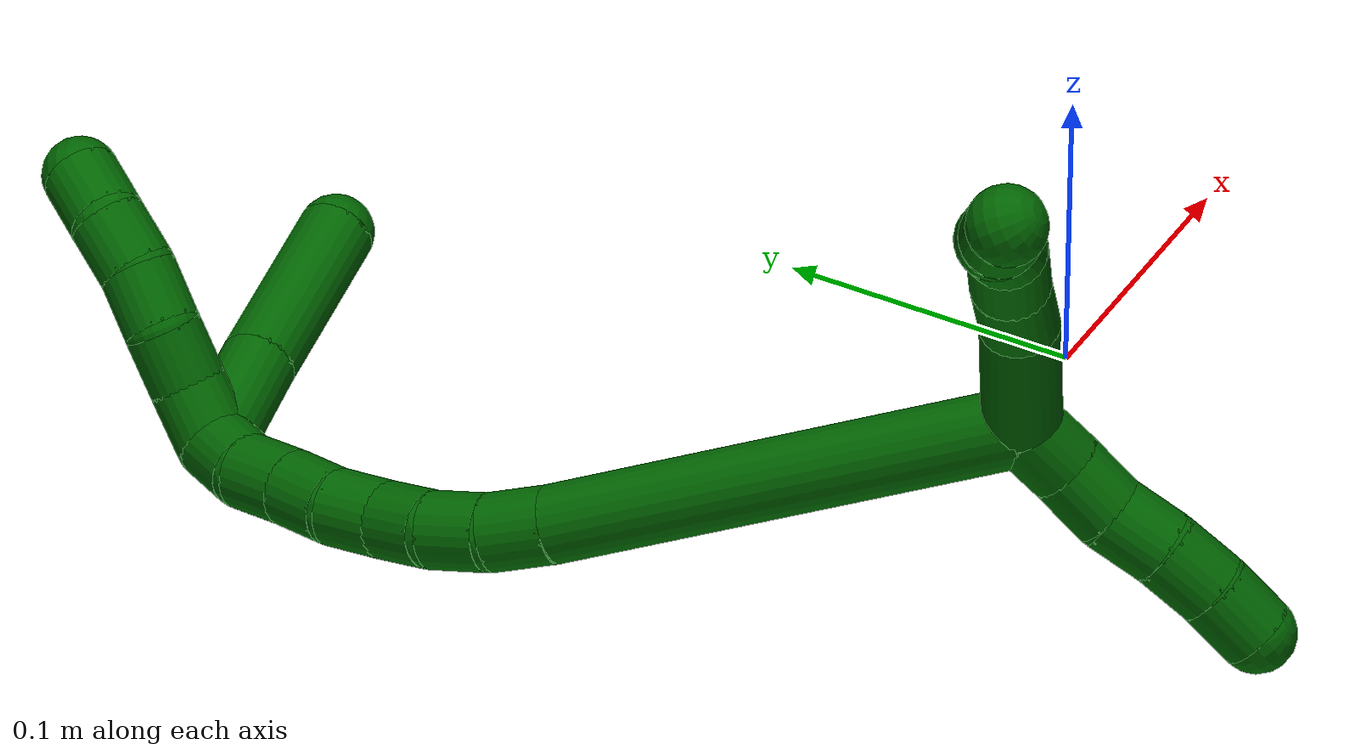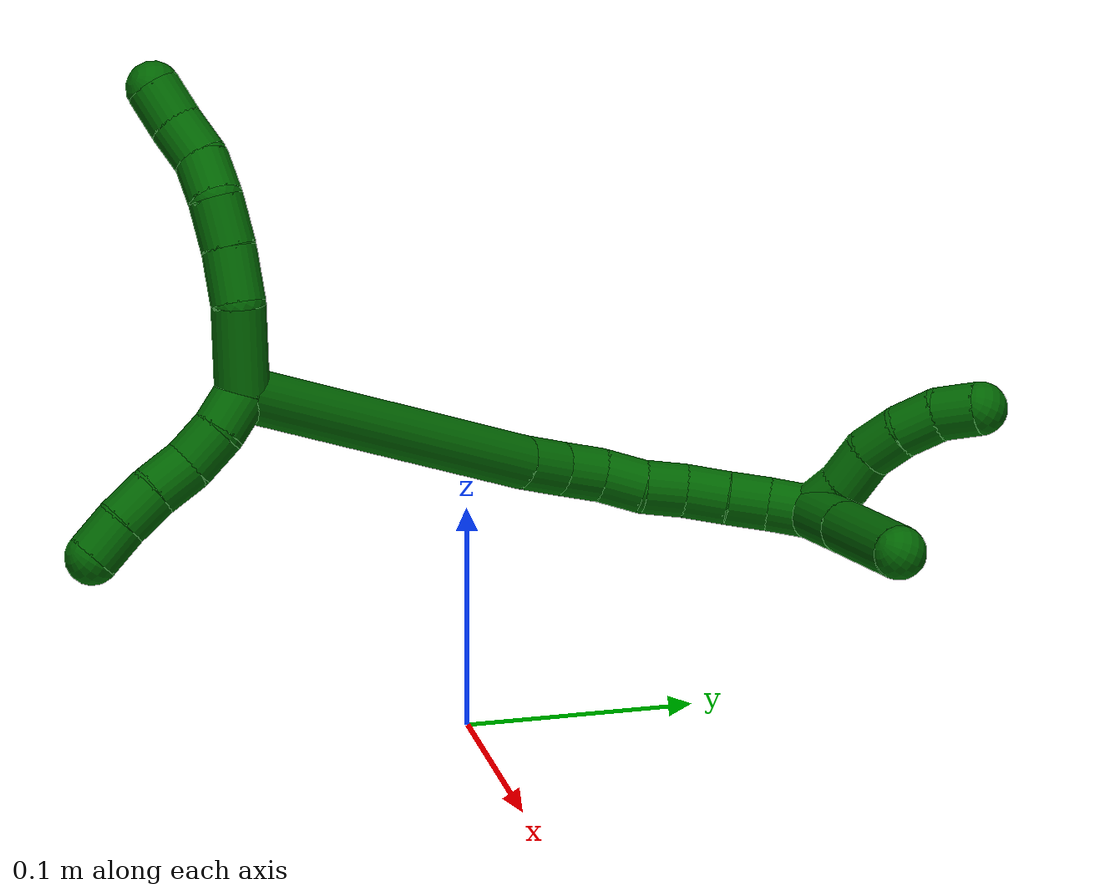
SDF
<sdf version="1.7">
 <world name="default">
  <model name="6">
   <static>0</static>
   <link name="6">
    <collision name="collision-cylinder-e_1_2_8">
     <pose>0.015985 0.006726 -0.010904 -2.58889 0.895164 -2.07441</pose>
     <geometry><cylinder><radius>0.0125</radius><length>0.04097</length></cylinder></geometry>
     <surface>
      <friction><ode><mu>1.16</mu><mu2>1.16</mu2><slip1>0</slip1><slip2>0</slip2></ode></friction>
      <contact><ode><kp>1e+06</kp><kd>1</kd><max_vel>0</max_vel><min_depth>0.001</min_depth></ode></contact>
     </surface>
    </collision>
    <visual name="visual-cylinder-e_1_2_8">
     <pose>0.015985 0.006726 -0.010904 -2.58889 0.895164 -2.07441</pose>
     <geometry><cylinder><radius>0.0125</radius><length>0.04097</length></cylinder></geometry>
     <material><ambient>0 0.392157 0.003922 1</ambient></material>
    </visual>
    <collision name="collision-cylinder-e_2_8_9">
     <pose>0.043133 0.013544 -0.027649 -3.12567 1.08867 -3.1153</pose>
     <geometry><cylinder><radius>0.0125</radius><length>0.025201</length></cylinder></geometry>
     <surface>
      <friction><ode><mu>1.16</mu><mu2>1.16</mu2><slip1>0</slip1><slip2>0</slip2></ode></friction>
      <contact><ode><kp>1e+06</kp><kd>1</kd><max_vel>0</max_vel><min_depth>0.001</min_depth></ode></contact>
     </surface>
    </collision>
    <visual name="visual-cylinder-e_2_8_9">
     <pose>0.043133 0.013544 -0.027649 -3.12567 1.08867 -3.1153</pose>
     <geometry><cylinder><radius>0.0125</radius><length>0.025201</length></cylinder></geometry>
     <material><ambient>0 0.392157 0.003922 1</ambient></material>
    </visual>
    <collision name="collision-cylinder-e_3_9_10">
     <pose>0.064093 0.013045 -0.039461 3.04268 1.02122 2.96532</pose>
     <geometry><cylinder><radius>0.0125</radius><length>0.022975</length></cylinder></geometry>
     <surface>
      <friction><ode><mu>1.16</mu><mu2>1.16</mu2><slip1>0</slip1><slip2>0</slip2></ode></friction>
      <contact><ode><kp>1e+06</kp><kd>1</kd><max_vel>0</max_vel><min_depth>0.001</min_depth></ode></contact>
     </surface>
    </collision>
    <visual name="visual-cylinder-e_3_9_10">
     <pose>0.064093 0.013045 -0.039461 3.04268 1.02122 2.96532</pose>
     <geometry><cylinder><radius>0.0125</radius><length>0.022975</length></cylinder></geometry>
     <material><ambient>0 0.392157 0.003922 1</ambient></material>
    </visual>
    <collision name="collision-cylinder-e_4_10_11">
     <pose>0.08275 0.008987 -0.049059 2.379 1.05572 1.93685</pose>
     <geometry><cylinder><radius>0.0125</radius><length>0.020364</length></cylinder></geometry>
     <surface>
      <friction><ode><mu>1.16</mu><mu2>1.16</mu2><slip1>0</slip1><slip2>0</slip2></ode></friction>
      <contact><ode><kp>1e+06</kp><kd>1</kd><max_vel>0</max_vel><min_depth>0.001</min_depth></ode></contact>
     </surface>
    </collision>
    <visual name="visual-cylinder-e_4_10_11">
     <pose>0.08275 0.008987 -0.049059 2.379 1.05572 1.93685</pose>
     <geometry><cylinder><radius>0.0125</radius><length>0.020364</length></cylinder></geometry>
     <material><ambient>0 0.392157 0.003922 1</ambient></material>
    </visual>
    <collision name="collision-cylinder-e_5_11_12">
     <pose>0.098829 0.000805 -0.058028 2.41825 0.791734 1.67022</pose>
     <geometry><cylinder><radius>0.0125</radius><length>0.02029</length></cylinder></geometry>
     <surface>
      <friction><ode><mu>1.16</mu><mu2>1.16</mu2><slip1>0</slip1><slip2>0</slip2></ode></friction>
      <contact><ode><kp>1e+06</kp><kd>1</kd><max_vel>0</max_vel><min_depth>0.001</min_depth></ode></contact>
     </surface>
    </collision>
    <visual name="visual-cylinder-e_5_11_12">
     <pose>0.098829 0.000805 -0.058028 2.41825 0.791734 1.67022</pose>
     <geometry><cylinder><radius>0.0125</radius><length>0.02029</length></cylinder></geometry>
     <material><ambient>0 0.392157 0.003922 1</ambient></material>
    </visual>
    <collision name="collision-cylinder-e_6_12_6">
     <pose>0.113399 -0.007438 -0.069335 2.6078 0.81503 2.01238</pose>
     <geometry><cylinder><radius>0.0125</radius><length>0.020201</length></cylinder></geometry>
     <surface>
      <friction><ode><mu>1.16</mu><mu2>1.16</mu2><slip1>0</slip1><slip2>0</slip2></ode></friction>
      <contact><ode><kp>1e+06</kp><kd>1</kd><max_vel>0</max_vel><min_depth>0.001</min_depth></ode></contact>
     </surface>
    </collision>
    <visual name="visual-cylinder-e_6_12_6">
     <pose>0.113399 -0.007438 -0.069335 2.6078 0.81503 2.01238</pose>
     <geometry><cylinder><radius>0.0125</radius><length>0.020201</length></cylinder></geometry>
     <material><ambient>0 0.392157 0.003922 1</ambient></material>
    </visual>
    <collision name="collision-cylinder-e_1_2_13">
     <pose>-0.00917 -0.003696 -0.001499 1.95618 -1.16055 -1.54383</pose>
     <geometry><cylinder><radius>0.0125</radius><length>0.02</length></cylinder></geometry>
     <surface>
      <friction><ode><mu>1.16</mu><mu2>1.16</mu2><slip1>0</slip1><slip2>0</slip2></ode></friction>
      <contact><ode><kp>1e+06</kp><kd>1</kd><max_vel>0</max_vel><min_depth>0.001</min_depth></ode></contact>
     </surface>
    </collision>
    <visual name="visual-cylinder-e_1_2_13">
     <pose>-0.00917 -0.003696 -0.001499 1.95618 -1.16055 -1.54383</pose>
     <geometry><cylinder><radius>0.0125</radius><length>0.02</length></cylinder></geometry>
     <material><ambient>0 0.392157 0.003922 1</ambient></material>
    </visual>
    <collision name="collision-cylinder-e_2_13_14">
     <pose>-0.026506 -0.012694 -0.00528 1.9772 -0.955497 -1.33289</pose>
     <geometry><cylinder><radius>0.0125</radius><length>0.02</length></cylinder></geometry>
     <surface>
      <friction><ode><mu>1.16</mu><mu2>1.16</mu2><slip1>0</slip1><slip2>0</slip2></ode></friction>
      <contact><ode><kp>1e+06</kp><kd>1</kd><max_vel>0</max_vel><min_depth>0.001</min_depth></ode></contact>
     </surface>
    </collision>
    <visual name="visual-cylinder-e_2_13_14">
     <pose>-0.026506 -0.012694 -0.00528 1.9772 -0.955497 -1.33289</pose>
     <geometry><cylinder><radius>0.0125</radius><length>0.02</length></cylinder></geometry>
     <material><ambient>0 0.392157 0.003922 1</ambient></material>
    </visual>
    <collision name="collision-cylinder-e_3_14_15">
     <pose>-0.042313 -0.022733 -0.011942 2.31694 -0.869528 -1.63065</pose>
     <geometry><cylinder><radius>0.0125</radius><length>0.02</length></cylinder></geometry>
     <surface>
      <friction><ode><mu>1.16</mu><mu2>1.16</mu2><slip1>0</slip1><slip2>0</slip2></ode></friction>
      <contact><ode><kp>1e+06</kp><kd>1</kd><max_vel>0</max_vel><min_depth>0.001</min_depth></ode></contact>
     </surface>
    </collision>
    <visual name="visual-cylinder-e_3_14_15">
     <pose>-0.042313 -0.022733 -0.011942 2.31694 -0.869528 -1.63065</pose>
     <geometry><cylinder><radius>0.0125</radius><length>0.02</length></cylinder></geometry>
     <material><ambient>0 0.392157 0.003922 1</ambient></material>
    </visual>
    <collision name="collision-cylinder-e_4_15_16">
     <pose>-0.058037 -0.032374 -0.019578 2.15708 -0.941443 -1.51835</pose>
     <geometry><cylinder><radius>0.0125</radius><length>0.02</length></cylinder></geometry>
     <surface>
      <friction><ode><mu>1.16</mu><mu2>1.16</mu2><slip1>0</slip1><slip2>0</slip2></ode></friction>
      <contact><ode><kp>1e+06</kp><kd>1</kd><max_vel>0</max_vel><min_depth>0.001</min_depth></ode></contact>
     </surface>
    </collision>
    <visual name="visual-cylinder-e_4_15_16">
     <pose>-0.058037 -0.032374 -0.019578 2.15708 -0.941443 -1.51835</pose>
     <geometry><cylinder><radius>0.0125</radius><length>0.02</length></cylinder></geometry>
     <material><ambient>0 0.392157 0.003922 1</ambient></material>
    </visual>
    <collision name="collision-cylinder-e_5_16_5">
     <pose>-0.074481 -0.042325 -0.024987 1.97388 -0.989867 -1.36996</pose>
     <geometry><cylinder><radius>0.0125</radius><length>0.02</length></cylinder></geometry>
     <surface>
      <friction><ode><mu>1.16</mu><mu2>1.16</mu2><slip1>0</slip1><slip2>0</slip2></ode></friction>
      <contact><ode><kp>1e+06</kp><kd>1</kd><max_vel>0</max_vel><min_depth>0.001</min_depth></ode></contact>
     </surface>
    </collision>
    <visual name="visual-cylinder-e_5_16_5">
     <pose>-0.074481 -0.042325 -0.024987 1.97388 -0.989867 -1.36996</pose>
     <geometry><cylinder><radius>0.0125</radius><length>0.02</length></cylinder></geometry>
     <material><ambient>0 0.392157 0.003922 1</ambient></material>
    </visual>
    <collision name="collision-cylinder-e_1_2_17">
     <pose>0.014195 0.004708 0.077709 -0.060514 0.18035 -0.005473</pose>
     <geometry><cylinder><radius>0.0125</radius><length>0.158271</length></cylinder></geometry>
     <surface>
      <friction><ode><mu>1.16</mu><mu2>1.16</mu2><slip1>0</slip1><slip2>0</slip2></ode></friction>
      <contact><ode><kp>1e+06</kp><kd>1</kd><max_vel>0</max_vel><min_depth>0.001</min_depth></ode></contact>
     </surface>
    </collision>
    <visual name="visual-cylinder-e_1_2_17">
     <pose>0.014195 0.004708 0.077709 -0.060514 0.18035 -0.005473</pose>
     <geometry><cylinder><radius>0.0125</radius><length>0.158271</length></cylinder></geometry>
     <material><ambient>0 0.392157 0.003922 1</ambient></material>
    </visual>
    <collision name="collision-cylinder-e_2_17_18">
     <pose>0.030742 0.010617 0.165717 -0.11602 0.223137 -0.013013</pose>
     <geometry><cylinder><radius>0.0125</radius><length>0.021264</length></cylinder></geometry>
     <surface>
      <friction><ode><mu>1.16</mu><mu2>1.16</mu2><slip1>0</slip1><slip2>0</slip2></ode></friction>
      <contact><ode><kp>1e+06</kp><kd>1</kd><max_vel>0</max_vel><min_depth>0.001</min_depth></ode></contact>
     </surface>
    </collision>
    <visual name="visual-cylinder-e_2_17_18">
     <pose>0.030742 0.010617 0.165717 -0.11602 0.223137 -0.013013</pose>
     <geometry><cylinder><radius>0.0125</radius><length>0.021264</length></cylinder></geometry>
     <material><ambient>0 0.392157 0.003922 1</ambient></material>
    </visual>
    <collision name="collision-cylinder-e_3_18_19">
     <pose>0.034781 0.014985 0.185452 -0.323901 0.167784 -0.027476</pose>
     <geometry><cylinder><radius>0.0125</radius><length>0.02019</length></cylinder></geometry>
     <surface>
      <friction><ode><mu>1.16</mu><mu2>1.16</mu2><slip1>0</slip1><slip2>0</slip2></ode></friction>
      <contact><ode><kp>1e+06</kp><kd>1</kd><max_vel>0</max_vel><min_depth>0.001</min_depth></ode></contact>
     </surface>
    </collision>
    <visual name="visual-cylinder-e_3_18_19">
     <pose>0.034781 0.014985 0.185452 -0.323901 0.167784 -0.027476</pose>
     <geometry><cylinder><radius>0.0125</radius><length>0.02019</length></cylinder></geometry>
     <material><ambient>0 0.392157 0.003922 1</ambient></material>
    </visual>
    <collision name="collision-cylinder-e_4_19_20">
     <pose>0.036252 0.023102 0.203695 -0.511981 -0.02127 0.005567</pose>
     <geometry><cylinder><radius>0.0125</radius><length>0.02021</length></cylinder></geometry>
     <surface>
      <friction><ode><mu>1.16</mu><mu2>1.16</mu2><slip1>0</slip1><slip2>0</slip2></ode></friction>
      <contact><ode><kp>1e+06</kp><kd>1</kd><max_vel>0</max_vel><min_depth>0.001</min_depth></ode></contact>
     </surface>
    </collision>
    <visual name="visual-cylinder-e_4_19_20">
     <pose>0.036252 0.023102 0.203695 -0.511981 -0.02127 0.005567</pose>
     <geometry><cylinder><radius>0.0125</radius><length>0.02021</length></cylinder></geometry>
     <material><ambient>0 0.392157 0.003922 1</ambient></material>
    </visual>
    <collision name="collision-cylinder-e_5_20_21">
     <pose>0.037712 0.032781 0.221154 -0.500242 0.168265 -0.043082</pose>
     <geometry><cylinder><radius>0.0125</radius><length>0.020003</length></cylinder></geometry>
     <surface>
      <friction><ode><mu>1.16</mu><mu2>1.16</mu2><slip1>0</slip1><slip2>0</slip2></ode></friction>
      <contact><ode><kp>1e+06</kp><kd>1</kd><max_vel>0</max_vel><min_depth>0.001</min_depth></ode></contact>
     </surface>
    </collision>
    <visual name="visual-cylinder-e_5_20_21">
     <pose>0.037712 0.032781 0.221154 -0.500242 0.168265 -0.043082</pose>
     <geometry><cylinder><radius>0.0125</radius><length>0.020003</length></cylinder></geometry>
     <material><ambient>0 0.392157 0.003922 1</ambient></material>
    </visual>
    <collision name="collision-cylinder-e_6_21_22">
     <pose>0.039733 0.043585 0.237748 -0.652984 0.034577 -0.011709</pose>
     <geometry><cylinder><radius>0.0125</radius><length>0.020011</length></cylinder></geometry>
     <surface>
      <friction><ode><mu>1.16</mu><mu2>1.16</mu2><slip1>0</slip1><slip2>0</slip2></ode></friction>
      <contact><ode><kp>1e+06</kp><kd>1</kd><max_vel>0</max_vel><min_depth>0.001</min_depth></ode></contact>
     </surface>
    </collision>
    <visual name="visual-cylinder-e_6_21_22">
     <pose>0.039733 0.043585 0.237748 -0.652984 0.034577 -0.011709</pose>
     <geometry><cylinder><radius>0.0125</radius><length>0.020011</length></cylinder></geometry>
     <material><ambient>0 0.392157 0.003922 1</ambient></material>
    </visual>
    <collision name="collision-cylinder-e_7_22_23">
     <pose>0.040849 0.0553 0.253923 -0.600623 0.077063 -0.023875</pose>
     <geometry><cylinder><radius>0.0125</radius><length>0.020017</length></cylinder></geometry>
     <surface>
      <friction><ode><mu>1.16</mu><mu2>1.16</mu2><slip1>0</slip1><slip2>0</slip2></ode></friction>
      <contact><ode><kp>1e+06</kp><kd>1</kd><max_vel>0</max_vel><min_depth>0.001</min_depth></ode></contact>
     </surface>
    </collision>
    <visual name="visual-cylinder-e_7_22_23">
     <pose>0.040849 0.0553 0.253923 -0.600623 0.077063 -0.023875</pose>
     <geometry><cylinder><radius>0.0125</radius><length>0.020017</length></cylinder></geometry>
     <material><ambient>0 0.392157 0.003922 1</ambient></material>
    </visual>
    <collision name="collision-cylinder-e_8_23_1">
     <pose>0.040994 0.068562 0.268625 -0.867009 -0.062497 0.028935</pose>
     <geometry><cylinder><radius>0.0125</radius><length>0.020035</length></cylinder></geometry>
     <surface>
      <friction><ode><mu>1.16</mu><mu2>1.16</mu2><slip1>0</slip1><slip2>0</slip2></ode></friction>
      <contact><ode><kp>1e+06</kp><kd>1</kd><max_vel>0</max_vel><min_depth>0.001</min_depth></ode></contact>
     </surface>
    </collision>
    <visual name="visual-cylinder-e_8_23_1">
     <pose>0.040994 0.068562 0.268625 -0.867009 -0.062497 0.028935</pose>
     <geometry><cylinder><radius>0.0125</radius><length>0.020035</length></cylinder></geometry>
     <material><ambient>0 0.392157 0.003922 1</ambient></material>
    </visual>
    <collision name="collision-cylinder-e_1_1_24">
     <pose>0.045676 0.08461 0.276005 -1.46311 0.559477 -0.504783</pose>
     <geometry><cylinder><radius>0.0125</radius><length>0.02</length></cylinder></geometry>
     <surface>
      <friction><ode><mu>1.16</mu><mu2>1.16</mu2><slip1>0</slip1><slip2>0</slip2></ode></friction>
      <contact><ode><kp>1e+06</kp><kd>1</kd><max_vel>0</max_vel><min_depth>0.001</min_depth></ode></contact>
     </surface>
    </collision>
    <visual name="visual-cylinder-e_1_1_24">
     <pose>0.045676 0.08461 0.276005 -1.46311 0.559477 -0.504783</pose>
     <geometry><cylinder><radius>0.0125</radius><length>0.02</length></cylinder></geometry>
     <material><ambient>0 0.392157 0.003922 1</ambient></material>
    </visual>
    <collision name="collision-cylinder-e_2_24_25">
     <pose>0.057837 0.100307 0.276503 -1.62764 0.755086 -0.79487</pose>
     <geometry><cylinder><radius>0.0125</radius><length>0.02</length></cylinder></geometry>
     <surface>
      <friction><ode><mu>1.16</mu><mu2>1.16</mu2><slip1>0</slip1><slip2>0</slip2></ode></friction>
      <contact><ode><kp>1e+06</kp><kd>1</kd><max_vel>0</max_vel><min_depth>0.001</min_depth></ode></contact>
     </surface>
    </collision>
    <visual name="visual-cylinder-e_2_24_25">
     <pose>0.057837 0.100307 0.276503 -1.62764 0.755086 -0.79487</pose>
     <geometry><cylinder><radius>0.0125</radius><length>0.02</length></cylinder></geometry>
     <material><ambient>0 0.392157 0.003922 1</ambient></material>
    </visual>
    <collision name="collision-cylinder-e_3_25_26">
     <pose>0.069181 0.116443 0.277198 -1.44639 0.465756 -0.412776</pose>
     <geometry><cylinder><radius>0.0125</radius><length>0.02</length></cylinder></geometry>
     <surface>
      <friction><ode><mu>1.16</mu><mu2>1.16</mu2><slip1>0</slip1><slip2>0</slip2></ode></friction>
      <contact><ode><kp>1e+06</kp><kd>1</kd><max_vel>0</max_vel><min_depth>0.001</min_depth></ode></contact>
     </surface>
    </collision>
    <visual name="visual-cylinder-e_3_25_26">
     <pose>0.069181 0.116443 0.277198 -1.44639 0.465756 -0.412776</pose>
     <geometry><cylinder><radius>0.0125</radius><length>0.02</length></cylinder></geometry>
     <material><ambient>0 0.392157 0.003922 1</ambient></material>
    </visual>
    <collision name="collision-cylinder-e_4_26_27">
     <pose>0.077605 0.13405 0.281156 -1.25564 0.404154 -0.295223</pose>
     <geometry><cylinder><radius>0.0125</radius><length>0.02</length></cylinder></geometry>
     <surface>
      <friction><ode><mu>1.16</mu><mu2>1.16</mu2><slip1>0</slip1><slip2>0</slip2></ode></friction>
      <contact><ode><kp>1e+06</kp><kd>1</kd><max_vel>0</max_vel><min_depth>0.001</min_depth></ode></contact>
     </surface>
    </collision>
    <visual name="visual-cylinder-e_4_26_27">
     <pose>0.077605 0.13405 0.281156 -1.25564 0.404154 -0.295223</pose>
     <geometry><cylinder><radius>0.0125</radius><length>0.02</length></cylinder></geometry>
     <material><ambient>0 0.392157 0.003922 1</ambient></material>
    </visual>
    <collision name="collision-cylinder-e_5_27_4">
     <pose>0.082928 0.151868 0.287967 -1.15928 0.139494 -0.091405</pose>
     <geometry><cylinder><radius>0.0125</radius><length>0.02</length></cylinder></geometry>
     <surface>
      <friction><ode><mu>1.16</mu><mu2>1.16</mu2><slip1>0</slip1><slip2>0</slip2></ode></friction>
      <contact><ode><kp>1e+06</kp><kd>1</kd><max_vel>0</max_vel><min_depth>0.001</min_depth></ode></contact>
     </surface>
    </collision>
    <visual name="visual-cylinder-e_5_27_4">
     <pose>0.082928 0.151868 0.287967 -1.15928 0.139494 -0.091405</pose>
     <geometry><cylinder><radius>0.0125</radius><length>0.02</length></cylinder></geometry>
     <material><ambient>0 0.392157 0.003922 1</ambient></material>
    </visual>
    <collision name="collision-cylinder-e_1_1_28">
     <pose>0.032326 0.092933 0.271974 -1.75498 -0.441039 0.52702</pose>
     <geometry><cylinder><radius>0.0125</radius><length>0.03768</length></cylinder></geometry>
     <surface>
      <friction><ode><mu>1.16</mu><mu2>1.16</mu2><slip1>0</slip1><slip2>0</slip2></ode></friction>
      <contact><ode><kp>1e+06</kp><kd>1</kd><max_vel>0</max_vel><min_depth>0.001</min_depth></ode></contact>
     </surface>
    </collision>
    <visual name="visual-cylinder-e_1_1_28">
     <pose>0.032326 0.092933 0.271974 -1.75498 -0.441039 0.52702</pose>
     <geometry><cylinder><radius>0.0125</radius><length>0.03768</length></cylinder></geometry>
     <material><ambient>0 0.392157 0.003922 1</ambient></material>
    </visual>
    <collision name="collision-cylinder-e_2_28_3">
     <pose>0.010871 0.137031 0.262292 -1.80628 -0.444997 0.558881</pose>
     <geometry><cylinder><radius>0.0125</radius><length>0.06232</length></cylinder></geometry>
     <surface>
      <friction><ode><mu>1.16</mu><mu2>1.16</mu2><slip1>0</slip1><slip2>0</slip2></ode></friction>
      <contact><ode><kp>1e+06</kp><kd>1</kd><max_vel>0</max_vel><min_depth>0.001</min_depth></ode></contact>
     </surface>
    </collision>
    <visual name="visual-cylinder-e_2_28_3">
     <pose>0.010871 0.137031 0.262292 -1.80628 -0.444997 0.558881</pose>
     <geometry><cylinder><radius>0.0125</radius><length>0.06232</length></cylinder></geometry>
     <material><ambient>0 0.392157 0.003922 1</ambient></material>
    </visual>
    <collision name="collision-sphere-3">
     <pose>-0.002542 0.164381 0.25573 0 -0 0</pose>
     <geometry><sphere><radius>0.0125</radius></sphere></geometry>
     <surface>
      <friction><ode><mu>1.16</mu><mu2>1.16</mu2><slip1>0</slip1><slip2>0</slip2></ode></friction>
      <contact><ode><kp>1e+06</kp><kd>1</kd><max_vel>0</max_vel><min_depth>0.001</min_depth></ode></contact>
     </surface>
    </collision>
    <visual name="visual-sphere-3">
     <pose>-0.002542 0.164381 0.25573 0 -0 0</pose>
     <geometry><sphere><radius>0.0125</radius></sphere></geometry>
     <material><ambient>0 0.392157 0.003922 1</ambient></material>
    </visual>
    <collision name="collision-sphere-28">
     <pose>0.024284 0.109682 0.268854 0 -0 0</pose>
     <geometry><sphere><radius>0.0125</radius></sphere></geometry>
     <surface>
      <friction><ode><mu>1.16</mu><mu2>1.16</mu2><slip1>0</slip1><slip2>0</slip2></ode></friction>
      <contact><ode><kp>1e+06</kp><kd>1</kd><max_vel>0</max_vel><min_depth>0.001</min_depth></ode></contact>
     </surface>
    </collision>
    <visual name="visual-sphere-28">
     <pose>0.024284 0.109682 0.268854 0 -0 0</pose>
     <geometry><sphere><radius>0.0125</radius></sphere></geometry>
     <material><ambient>0 0.392157 0.003922 1</ambient></material>
    </visual>
    <collision name="collision-sphere-4">
     <pose>0.084318 0.160944 0.291928 0 -0 0</pose>
     <geometry><sphere><radius>0.0125</radius></sphere></geometry>
     <surface>
      <friction><ode><mu>1.16</mu><mu2>1.16</mu2><slip1>0</slip1><slip2>0</slip2></ode></friction>
      <contact><ode><kp>1e+06</kp><kd>1</kd><max_vel>0</max_vel><min_depth>0.001</min_depth></ode></contact>
     </surface>
    </collision>
    <visual name="visual-sphere-4">
     <pose>0.084318 0.160944 0.291928 0 -0 0</pose>
     <geometry><sphere><radius>0.0125</radius></sphere></geometry>
     <material><ambient>0 0.392157 0.003922 1</ambient></material>
    </visual>
    <collision name="collision-sphere-27">
     <pose>0.081537 0.142792 0.284006 0 -0 0</pose>
     <geometry><sphere><radius>0.0125</radius></sphere></geometry>
     <surface>
      <friction><ode><mu>1.16</mu><mu2>1.16</mu2><slip1>0</slip1><slip2>0</slip2></ode></friction>
      <contact><ode><kp>1e+06</kp><kd>1</kd><max_vel>0</max_vel><min_depth>0.001</min_depth></ode></contact>
     </surface>
    </collision>
    <visual name="visual-sphere-27">
     <pose>0.081537 0.142792 0.284006 0 -0 0</pose>
     <geometry><sphere><radius>0.0125</radius></sphere></geometry>
     <material><ambient>0 0.392157 0.003922 1</ambient></material>
    </visual>
    <collision name="collision-sphere-26">
     <pose>0.073672 0.125309 0.278306 0 -0 0</pose>
     <geometry><sphere><radius>0.0125</radius></sphere></geometry>
     <surface>
      <friction><ode><mu>1.16</mu><mu2>1.16</mu2><slip1>0</slip1><slip2>0</slip2></ode></friction>
      <contact><ode><kp>1e+06</kp><kd>1</kd><max_vel>0</max_vel><min_depth>0.001</min_depth></ode></contact>
     </surface>
    </collision>
    <visual name="visual-sphere-26">
     <pose>0.073672 0.125309 0.278306 0 -0 0</pose>
     <geometry><sphere><radius>0.0125</radius></sphere></geometry>
     <material><ambient>0 0.392157 0.003922 1</ambient></material>
    </visual>
    <collision name="collision-sphere-25">
     <pose>0.06469 0.107577 0.276089 0 -0 0</pose>
     <geometry><sphere><radius>0.0125</radius></sphere></geometry>
     <surface>
      <friction><ode><mu>1.16</mu><mu2>1.16</mu2><slip1>0</slip1><slip2>0</slip2></ode></friction>
      <contact><ode><kp>1e+06</kp><kd>1</kd><max_vel>0</max_vel><min_depth>0.001</min_depth></ode></contact>
     </surface>
    </collision>
    <visual name="visual-sphere-25">
     <pose>0.06469 0.107577 0.276089 0 -0 0</pose>
     <geometry><sphere><radius>0.0125</radius></sphere></geometry>
     <material><ambient>0 0.392157 0.003922 1</ambient></material>
    </visual>
    <collision name="collision-sphere-24">
     <pose>0.050983 0.093037 0.276916 0 -0 0</pose>
     <geometry><sphere><radius>0.0125</radius></sphere></geometry>
     <surface>
      <friction><ode><mu>1.16</mu><mu2>1.16</mu2><slip1>0</slip1><slip2>0</slip2></ode></friction>
      <contact><ode><kp>1e+06</kp><kd>1</kd><max_vel>0</max_vel><min_depth>0.001</min_depth></ode></contact>
     </surface>
    </collision>
    <visual name="visual-sphere-24">
     <pose>0.050983 0.093037 0.276916 0 -0 0</pose>
     <geometry><sphere><radius>0.0125</radius></sphere></geometry>
     <material><ambient>0 0.392157 0.003922 1</ambient></material>
    </visual>
    <collision name="collision-sphere-1">
     <pose>0.040369 0.076184 0.275095 0 -0 0</pose>
     <geometry><sphere><radius>0.0125</radius></sphere></geometry>
     <surface>
      <friction><ode><mu>1.16</mu><mu2>1.16</mu2><slip1>0</slip1><slip2>0</slip2></ode></friction>
      <contact><ode><kp>1e+06</kp><kd>1</kd><max_vel>0</max_vel><min_depth>0.001</min_depth></ode></contact>
     </surface>
    </collision>
    <visual name="visual-sphere-1">
     <pose>0.040369 0.076184 0.275095 0 -0 0</pose>
     <geometry><sphere><radius>0.0125</radius></sphere></geometry>
     <material><ambient>0 0.392157 0.003922 1</ambient></material>
    </visual>
    <collision name="collision-sphere-23">
     <pose>0.04162 0.06094 0.262155 0 -0 0</pose>
     <geometry><sphere><radius>0.0125</radius></sphere></geometry>
     <surface>
      <friction><ode><mu>1.16</mu><mu2>1.16</mu2><slip1>0</slip1><slip2>0</slip2></ode></friction>
      <contact><ode><kp>1e+06</kp><kd>1</kd><max_vel>0</max_vel><min_depth>0.001</min_depth></ode></contact>
     </surface>
    </collision>
    <visual name="visual-sphere-23">
     <pose>0.04162 0.06094 0.262155 0 -0 0</pose>
     <geometry><sphere><radius>0.0125</radius></sphere></geometry>
     <material><ambient>0 0.392157 0.003922 1</ambient></material>
    </visual>
    <collision name="collision-sphere-22">
     <pose>0.040079 0.04966 0.24569 0 -0 0</pose>
     <geometry><sphere><radius>0.0125</radius></sphere></geometry>
     <surface>
      <friction><ode><mu>1.16</mu><mu2>1.16</mu2><slip1>0</slip1><slip2>0</slip2></ode></friction>
      <contact><ode><kp>1e+06</kp><kd>1</kd><max_vel>0</max_vel><min_depth>0.001</min_depth></ode></contact>
     </surface>
    </collision>
    <visual name="visual-sphere-22">
     <pose>0.040079 0.04966 0.24569 0 -0 0</pose>
     <geometry><sphere><radius>0.0125</radius></sphere></geometry>
     <material><ambient>0 0.392157 0.003922 1</ambient></material>
    </visual>
    <collision name="collision-sphere-21">
     <pose>0.039387 0.03751 0.229806 0 -0 0</pose>
     <geometry><sphere><radius>0.0125</radius></sphere></geometry>
     <surface>
      <friction><ode><mu>1.16</mu><mu2>1.16</mu2><slip1>0</slip1><slip2>0</slip2></ode></friction>
      <contact><ode><kp>1e+06</kp><kd>1</kd><max_vel>0</max_vel><min_depth>0.001</min_depth></ode></contact>
     </surface>
    </collision>
    <visual name="visual-sphere-21">
     <pose>0.039387 0.03751 0.229806 0 -0 0</pose>
     <geometry><sphere><radius>0.0125</radius></sphere></geometry>
     <material><ambient>0 0.392157 0.003922 1</ambient></material>
    </visual>
    <collision name="collision-sphere-12">
     <pose>0.106048 -0.003913 -0.063371 0 -0 0</pose>
     <geometry><sphere><radius>0.0125</radius></sphere></geometry>
     <surface>
      <friction><ode><mu>1.16</mu><mu2>1.16</mu2><slip1>0</slip1><slip2>0</slip2></ode></friction>
      <contact><ode><kp>1e+06</kp><kd>1</kd><max_vel>0</max_vel><min_depth>0.001</min_depth></ode></contact>
     </surface>
    </collision>
    <visual name="visual-sphere-12">
     <pose>0.106048 -0.003913 -0.063371 0 -0 0</pose>
     <geometry><sphere><radius>0.0125</radius></sphere></geometry>
     <material><ambient>0 0.392157 0.003922 1</ambient></material>
    </visual>
    <collision name="collision-sphere-11">
     <pose>0.091611 0.005523 -0.052685 0 -0 0</pose>
     <geometry><sphere><radius>0.0125</radius></sphere></geometry>
     <surface>
      <friction><ode><mu>1.16</mu><mu2>1.16</mu2><slip1>0</slip1><slip2>0</slip2></ode></friction>
      <contact><ode><kp>1e+06</kp><kd>1</kd><max_vel>0</max_vel><min_depth>0.001</min_depth></ode></contact>
     </surface>
    </collision>
    <visual name="visual-sphere-11">
     <pose>0.091611 0.005523 -0.052685 0 -0 0</pose>
     <geometry><sphere><radius>0.0125</radius></sphere></geometry>
     <material><ambient>0 0.392157 0.003922 1</ambient></material>
    </visual>
    <collision name="collision-sphere-10">
     <pose>0.073889 0.012452 -0.045432 0 -0 0</pose>
     <geometry><sphere><radius>0.0125</radius></sphere></geometry>
     <surface>
      <friction><ode><mu>1.16</mu><mu2>1.16</mu2><slip1>0</slip1><slip2>0</slip2></ode></friction>
      <contact><ode><kp>1e+06</kp><kd>1</kd><max_vel>0</max_vel><min_depth>0.001</min_depth></ode></contact>
     </surface>
    </collision>
    <visual name="visual-sphere-10">
     <pose>0.073889 0.012452 -0.045432 0 -0 0</pose>
     <geometry><sphere><radius>0.0125</radius></sphere></geometry>
     <material><ambient>0 0.392157 0.003922 1</ambient></material>
    </visual>
    <collision name="collision-sphere-9">
     <pose>0.054298 0.013637 -0.033491 0 -0 0</pose>
     <geometry><sphere><radius>0.0125</radius></sphere></geometry>
     <surface>
      <friction><ode><mu>1.16</mu><mu2>1.16</mu2><slip1>0</slip1><slip2>0</slip2></ode></friction>
      <contact><ode><kp>1e+06</kp><kd>1</kd><max_vel>0</max_vel><min_depth>0.001</min_depth></ode></contact>
     </surface>
    </collision>
    <visual name="visual-sphere-9">
     <pose>0.054298 0.013637 -0.033491 0 -0 0</pose>
     <geometry><sphere><radius>0.0125</radius></sphere></geometry>
     <material><ambient>0 0.392157 0.003922 1</ambient></material>
    </visual>
    <collision name="collision-sphere-2">
     <geometry><sphere><radius>0.0125</radius></sphere></geometry>
     <surface>
      <friction><ode><mu>1.16</mu><mu2>1.16</mu2><slip1>0</slip1><slip2>0</slip2></ode></friction>
      <contact><ode><kp>1e+06</kp><kd>1</kd><max_vel>0</max_vel><min_depth>0.001</min_depth></ode></contact>
     </surface>
    </collision>
    <visual name="visual-sphere-2">
     <geometry><sphere><radius>0.0125</radius></sphere></geometry>
     <material><ambient>0 0.392157 0.003922 1</ambient></material>
    </visual>
    <collision name="collision-sphere-19">
     <pose>0.036467 0.018153 0.194888 0 -0 0</pose>
     <geometry><sphere><radius>0.0125</radius></sphere></geometry>
     <surface>
      <friction><ode><mu>1.16</mu><mu2>1.16</mu2><slip1>0</slip1><slip2>0</slip2></ode></friction>
      <contact><ode><kp>1e+06</kp><kd>1</kd><max_vel>0</max_vel><min_depth>0.001</min_depth></ode></contact>
     </surface>
    </collision>
    <visual name="visual-sphere-19">
     <pose>0.036467 0.018153 0.194888 0 -0 0</pose>
     <geometry><sphere><radius>0.0125</radius></sphere></geometry>
     <material><ambient>0 0.392157 0.003922 1</ambient></material>
    </visual>
    <collision name="collision-sphere-8">
     <pose>0.031969 0.013451 -0.021807 0 -0 0</pose>
     <geometry><sphere><radius>0.0125</radius></sphere></geometry>
     <surface>
      <friction><ode><mu>1.16</mu><mu2>1.16</mu2><slip1>0</slip1><slip2>0</slip2></ode></friction>
      <contact><ode><kp>1e+06</kp><kd>1</kd><max_vel>0</max_vel><min_depth>0.001</min_depth></ode></contact>
     </surface>
    </collision>
    <visual name="visual-sphere-8">
     <pose>0.031969 0.013451 -0.021807 0 -0 0</pose>
     <geometry><sphere><radius>0.0125</radius></sphere></geometry>
     <material><ambient>0 0.392157 0.003922 1</ambient></material>
    </visual>
    <collision name="collision-sphere-6">
     <pose>0.12075 -0.010963 -0.075299 0 -0 0</pose>
     <geometry><sphere><radius>0.0125</radius></sphere></geometry>
     <surface>
      <friction><ode><mu>1.16</mu><mu2>1.16</mu2><slip1>0</slip1><slip2>0</slip2></ode></friction>
      <contact><ode><kp>1e+06</kp><kd>1</kd><max_vel>0</max_vel><min_depth>0.001</min_depth></ode></contact>
     </surface>
    </collision>
    <visual name="visual-sphere-6">
     <pose>0.12075 -0.010963 -0.075299 0 -0 0</pose>
     <geometry><sphere><radius>0.0125</radius></sphere></geometry>
     <material><ambient>0 0.392157 0.003922 1</ambient></material>
    </visual>
    <collision name="collision-sphere-13">
     <pose>-0.01834 -0.007392 -0.002999 0 -0 0</pose>
     <geometry><sphere><radius>0.0125</radius></sphere></geometry>
     <surface>
      <friction><ode><mu>1.16</mu><mu2>1.16</mu2><slip1>0</slip1><slip2>0</slip2></ode></friction>
      <contact><ode><kp>1e+06</kp><kd>1</kd><max_vel>0</max_vel><min_depth>0.001</min_depth></ode></contact>
     </surface>
    </collision>
    <visual name="visual-sphere-13">
     <pose>-0.01834 -0.007392 -0.002999 0 -0 0</pose>
     <geometry><sphere><radius>0.0125</radius></sphere></geometry>
     <material><ambient>0 0.392157 0.003922 1</ambient></material>
    </visual>
    <collision name="collision-sphere-14">
     <pose>-0.034672 -0.017995 -0.007562 0 -0 0</pose>
     <geometry><sphere><radius>0.0125</radius></sphere></geometry>
     <surface>
      <friction><ode><mu>1.16</mu><mu2>1.16</mu2><slip1>0</slip1><slip2>0</slip2></ode></friction>
      <contact><ode><kp>1e+06</kp><kd>1</kd><max_vel>0</max_vel><min_depth>0.001</min_depth></ode></contact>
     </surface>
    </collision>
    <visual name="visual-sphere-14">
     <pose>-0.034672 -0.017995 -0.007562 0 -0 0</pose>
     <geometry><sphere><radius>0.0125</radius></sphere></geometry>
     <material><ambient>0 0.392157 0.003922 1</ambient></material>
    </visual>
    <collision name="collision-sphere-15">
     <pose>-0.049953 -0.027471 -0.016321 0 -0 0</pose>
     <geometry><sphere><radius>0.0125</radius></sphere></geometry>
     <surface>
      <friction><ode><mu>1.16</mu><mu2>1.16</mu2><slip1>0</slip1><slip2>0</slip2></ode></friction>
      <contact><ode><kp>1e+06</kp><kd>1</kd><max_vel>0</max_vel><min_depth>0.001</min_depth></ode></contact>
     </surface>
    </collision>
    <visual name="visual-sphere-15">
     <pose>-0.049953 -0.027471 -0.016321 0 -0 0</pose>
     <geometry><sphere><radius>0.0125</radius></sphere></geometry>
     <material><ambient>0 0.392157 0.003922 1</ambient></material>
    </visual>
    <collision name="collision-sphere-16">
     <pose>-0.066121 -0.037277 -0.022835 0 -0 0</pose>
     <geometry><sphere><radius>0.0125</radius></sphere></geometry>
     <surface>
      <friction><ode><mu>1.16</mu><mu2>1.16</mu2><slip1>0</slip1><slip2>0</slip2></ode></friction>
      <contact><ode><kp>1e+06</kp><kd>1</kd><max_vel>0</max_vel><min_depth>0.001</min_depth></ode></contact>
     </surface>
    </collision>
    <visual name="visual-sphere-16">
     <pose>-0.066121 -0.037277 -0.022835 0 -0 0</pose>
     <geometry><sphere><radius>0.0125</radius></sphere></geometry>
     <material><ambient>0 0.392157 0.003922 1</ambient></material>
    </visual>
    <collision name="collision-sphere-5">
     <pose>-0.08284 -0.047374 -0.02714 0 -0 0</pose>
     <geometry><sphere><radius>0.0125</radius></sphere></geometry>
     <surface>
      <friction><ode><mu>1.16</mu><mu2>1.16</mu2><slip1>0</slip1><slip2>0</slip2></ode></friction>
      <contact><ode><kp>1e+06</kp><kd>1</kd><max_vel>0</max_vel><min_depth>0.001</min_depth></ode></contact>
     </surface>
    </collision>
    <visual name="visual-sphere-5">
     <pose>-0.08284 -0.047374 -0.02714 0 -0 0</pose>
     <geometry><sphere><radius>0.0125</radius></sphere></geometry>
     <material><ambient>0 0.392157 0.003922 1</ambient></material>
    </visual>
    <collision name="collision-sphere-17">
     <pose>0.02839 0.009417 0.155419 0 -0 0</pose>
     <geometry><sphere><radius>0.0125</radius></sphere></geometry>
     <surface>
      <friction><ode><mu>1.16</mu><mu2>1.16</mu2><slip1>0</slip1><slip2>0</slip2></ode></friction>
      <contact><ode><kp>1e+06</kp><kd>1</kd><max_vel>0</max_vel><min_depth>0.001</min_depth></ode></contact>
     </surface>
    </collision>
    <visual name="visual-sphere-17">
     <pose>0.02839 0.009417 0.155419 0 -0 0</pose>
     <geometry><sphere><radius>0.0125</radius></sphere></geometry>
     <material><ambient>0 0.392157 0.003922 1</ambient></material>
    </visual>
    <collision name="collision-sphere-18">
     <pose>0.033095 0.011817 0.176016 0 -0 0</pose>
     <geometry><sphere><radius>0.0125</radius></sphere></geometry>
     <surface>
      <friction><ode><mu>1.16</mu><mu2>1.16</mu2><slip1>0</slip1><slip2>0</slip2></ode></friction>
      <contact><ode><kp>1e+06</kp><kd>1</kd><max_vel>0</max_vel><min_depth>0.001</min_depth></ode></contact>
     </surface>
    </collision>
    <visual name="visual-sphere-18">
     <pose>0.033095 0.011817 0.176016 0 -0 0</pose>
     <geometry><sphere><radius>0.0125</radius></sphere></geometry>
     <material><ambient>0 0.392157 0.003922 1</ambient></material>
    </visual>
    <collision name="collision-sphere-20">
     <pose>0.036037 0.028051 0.212502 0 -0 0</pose>
     <geometry><sphere><radius>0.0125</radius></sphere></geometry>
     <surface>
      <friction><ode><mu>1.16</mu><mu2>1.16</mu2><slip1>0</slip1><slip2>0</slip2></ode></friction>
      <contact><ode><kp>1e+06</kp><kd>1</kd><max_vel>0</max_vel><min_depth>0.001</min_depth></ode></contact>
     </surface>
    </collision>
    <visual name="visual-sphere-20">
     <pose>0.036037 0.028051 0.212502 0 -0 0</pose>
     <geometry><sphere><radius>0.0125</radius></sphere></geometry>
     <material><ambient>0 0.392157 0.003922 1</ambient></material>
    </visual>
    <inertial>
     <pose>0.028092 0.037634 0.121343 0 -0 0</pose>
     <mass>0.75</mass>
     <inertia>
      <ixx>0.000375</ixx>
      <ixy>0</ixy>
      <ixz>0</ixz>
      <iyy>0.000385</iyy>
      <iyz>0</iyz>
      <izz>-9.9e-05</izz>
     </inertia>
    </inertial>
   </link>
   <pose>-0.159255 -0.065429 0.102725 2.50502 -0.820081 2.62863</pose>
  </model>
 </world>
</sdf>
